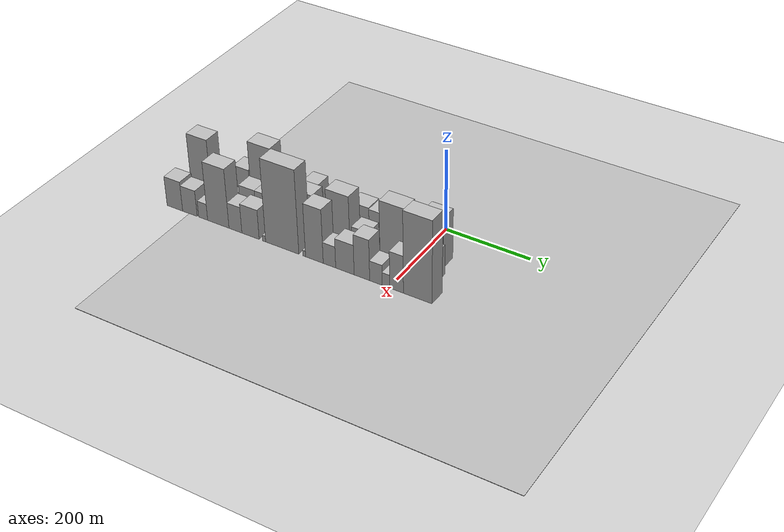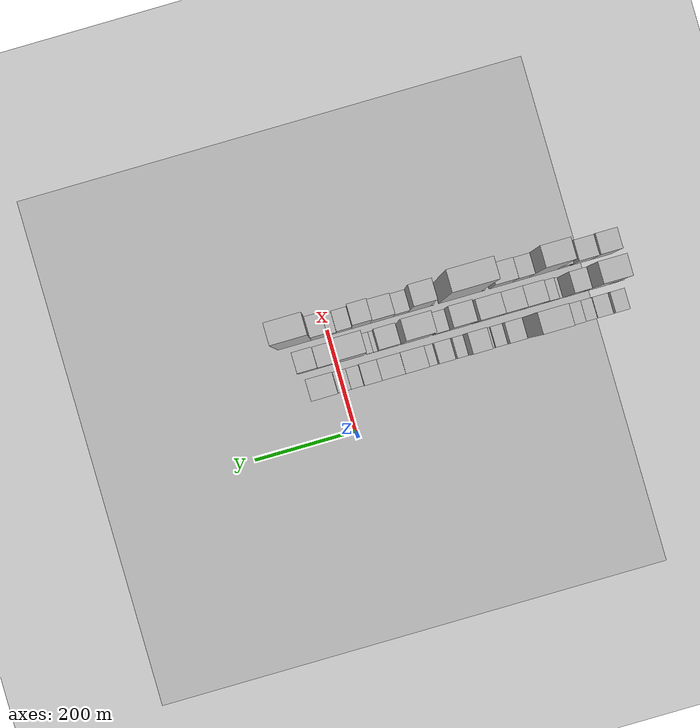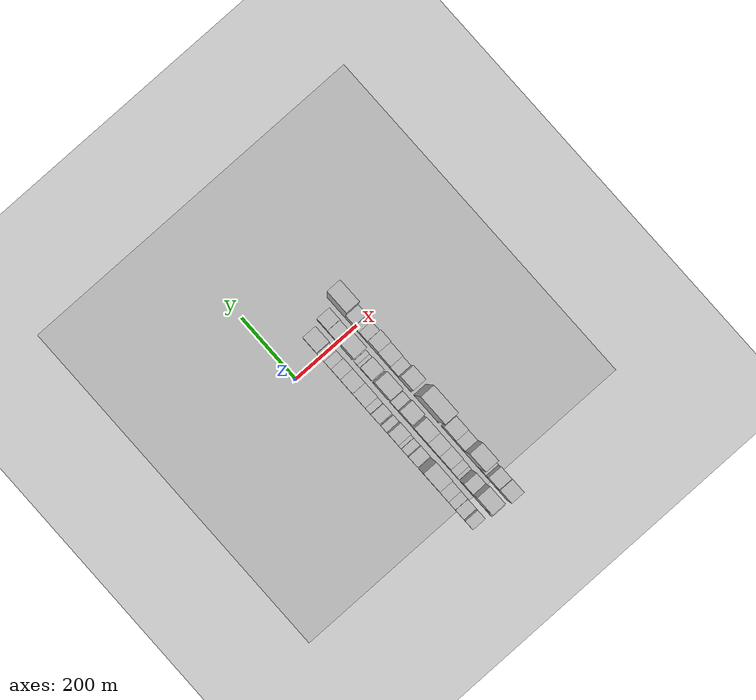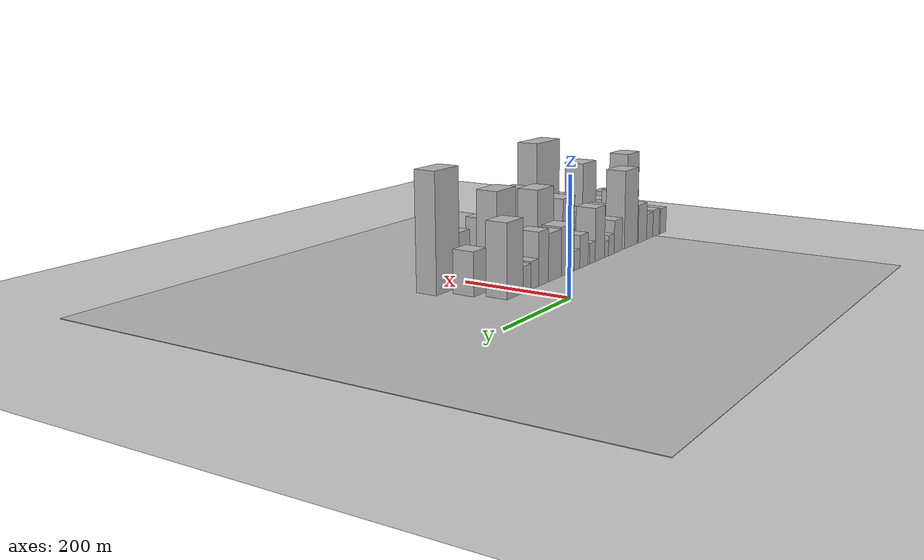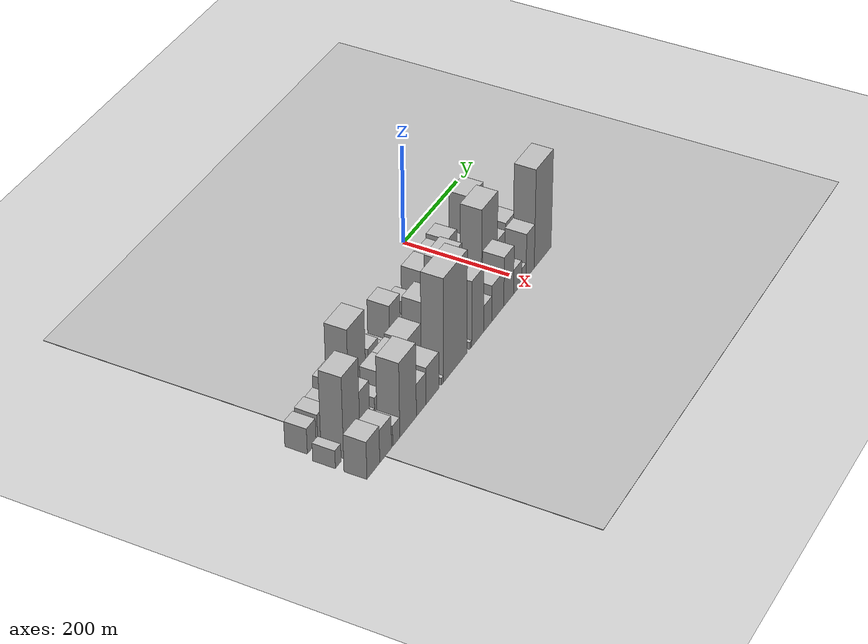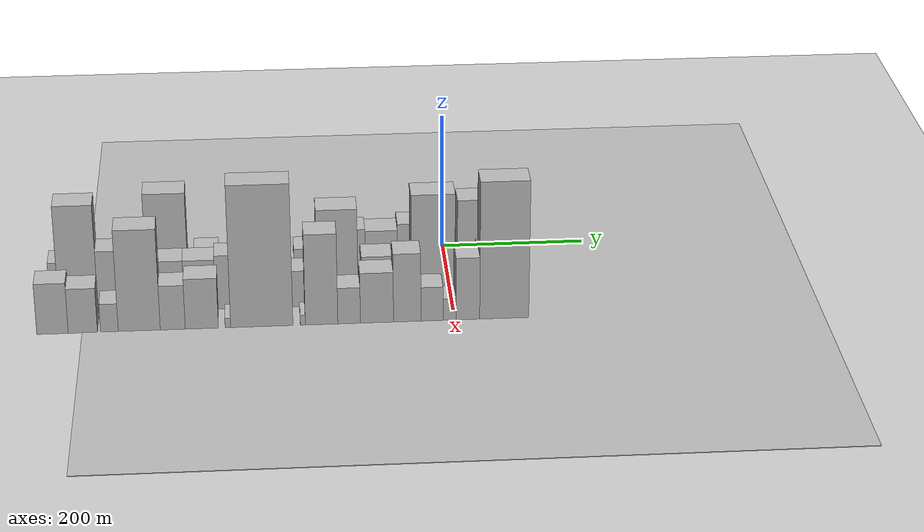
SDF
<sdf version="1.6">
 <world name="default">
  <include><name>ground_plane_1</name><uri>model://HANNAS_ground_plane</uri></include>
  <include>
   <name>ground_plane_2</name>
   <uri>model://HANNAS_ground_plane</uri>
   <pose>100 0 0  0 0 0</pose>
  </include>
  <model name="building_1">
   <static>1</static>
   <pose>100.0000 -536.0198 0 0.000000 0.000000 0.000000</pose>
   <link name="link">
    <pose>0 0 25.50 0 0 0</pose>
    <collision name="collision"><geometry><box><size>40.0000 27.9604 51.0000</size></box></geometry></collision>
    <visual name="visual">
     <cast_shadows>0</cast_shadows>
     <geometry><box><size>40.0000 27.9604 51.0000</size></box></geometry>
     <material>
      <script>
       <uri>model://HANNAS_wall/materials/scripts</uri>
       <uri>model://HANNAS_wall/materials/textures</uri>
       <name>vrc/HANNAS_wall</name>
      </script>
     </material>
    </visual>
   </link>
  </model>
  <model name="building_2">
   <static>1</static>
   <pose>100.0000 -501.8610 0 0.000000 0.000000 0.000000</pose>
   <link name="link">
    <pose>0 0 27.00 0 0 0</pose>
    <collision name="collision"><geometry><box><size>40.0000 30.3572 54.0000</size></box></geometry></collision>
    <visual name="visual">
     <cast_shadows>0</cast_shadows>
     <geometry><box><size>40.0000 30.3572 54.0000</size></box></geometry>
     <material>
      <script>
       <uri>model://HANNAS_wall/materials/scripts</uri>
       <uri>model://HANNAS_wall/materials/textures</uri>
       <name>vrc/HANNAS_wall</name>
      </script>
     </material>
    </visual>
   </link>
  </model>
  <model name="building_3">
   <static>1</static>
   <pose>100.0000 -472.5539 0 0.000000 0.000000 0.000000</pose>
   <link name="link">
    <pose>0 0 25.50 0 0 0</pose>
    <collision name="collision"><geometry><box><size>40.0000 28.2571 51.0000</size></box></geometry></collision>
    <visual name="visual">
     <cast_shadows>0</cast_shadows>
     <geometry><box><size>40.0000 28.2571 51.0000</size></box></geometry>
     <material>
      <script>
       <uri>model://HANNAS_wall/materials/scripts</uri>
       <uri>model://HANNAS_wall/materials/textures</uri>
       <name>vrc/HANNAS_wall</name>
      </script>
     </material>
    </visual>
   </link>
  </model>
  <model name="building_4">
   <static>1</static>
   <pose>100.0000 -438.8511 0 0.000000 0.000000 0.000000</pose>
   <link name="link">
    <pose>0 0 37.50 0 0 0</pose>
    <collision name="collision"><geometry><box><size>40.0000 39.1485 75.0000</size></box></geometry></collision>
    <visual name="visual">
     <cast_shadows>0</cast_shadows>
     <geometry><box><size>40.0000 39.1485 75.0000</size></box></geometry>
     <material>
      <script>
       <uri>model://HANNAS_wall/materials/scripts</uri>
       <uri>model://HANNAS_wall/materials/textures</uri>
       <name>vrc/HANNAS_wall</name>
      </script>
     </material>
    </visual>
   </link>
  </model>
  <model name="building_5">
   <static>1</static>
   <pose>100.0000 -387.6877 0 0.000000 0.000000 0.000000</pose>
   <link name="link">
    <pose>0 0 75.00 0 0 0</pose>
    <collision name="collision"><geometry><box><size>40.0000 57.1784 150.0000</size></box></geometry></collision>
    <visual name="visual">
     <cast_shadows>0</cast_shadows>
     <geometry><box><size>40.0000 57.1784 150.0000</size></box></geometry>
     <material>
      <script>
       <uri>model://HANNAS_wall/materials/scripts</uri>
       <uri>model://HANNAS_wall/materials/textures</uri>
       <name>vrc/HANNAS_wall</name>
      </script>
     </material>
    </visual>
   </link>
  </model>
  <model name="building_6">
   <static>1</static>
   <pose>100.0000 -333.3778 0 0.000000 0.000000 0.000000</pose>
   <link name="link">
    <pose>0 0 31.50 0 0 0</pose>
    <collision name="collision"><geometry><box><size>40.0000 33.4414 63.0000</size></box></geometry></collision>
    <visual name="visual">
     <cast_shadows>0</cast_shadows>
     <geometry><box><size>40.0000 33.4414 63.0000</size></box></geometry>
     <material>
      <script>
       <uri>model://HANNAS_wall/materials/scripts</uri>
       <uri>model://HANNAS_wall/materials/textures</uri>
       <name>vrc/HANNAS_wall</name>
      </script>
     </material>
    </visual>
   </link>
  </model>
  <model name="building_7">
   <static>1</static>
   <pose>100.0000 -305.0431 0 0.000000 0.000000 0.000000</pose>
   <link name="link">
    <pose>0 0 19.50 0 0 0</pose>
    <collision name="collision"><geometry><box><size>40.0000 23.2279 39.0000</size></box></geometry></collision>
    <visual name="visual">
     <cast_shadows>0</cast_shadows>
     <geometry><box><size>40.0000 23.2279 39.0000</size></box></geometry>
     <material>
      <script>
       <uri>model://HANNAS_wall/materials/scripts</uri>
       <uri>model://HANNAS_wall/materials/textures</uri>
       <name>vrc/HANNAS_wall</name>
      </script>
     </material>
    </visual>
   </link>
  </model>
  <model name="building_8">
   <static>1</static>
   <pose>100.0000 -285.4440 0 0.000000 0.000000 0.000000</pose>
   <link name="link">
    <pose>0 0 15.00 0 0 0</pose>
    <collision name="collision"><geometry><box><size>40.0000 15.9703 30.0000</size></box></geometry></collision>
    <visual name="visual">
     <cast_shadows>0</cast_shadows>
     <geometry><box><size>40.0000 15.9703 30.0000</size></box></geometry>
     <material>
      <script>
       <uri>model://HANNAS_wall/materials/scripts</uri>
       <uri>model://HANNAS_wall/materials/textures</uri>
       <name>vrc/HANNAS_wall</name>
      </script>
     </material>
    </visual>
   </link>
  </model>
  <model name="building_9">
   <static>1</static>
   <pose>100.0000 -258.9687 0 0.000000 0.000000 0.000000</pose>
   <link name="link">
    <pose>0 0 49.50 0 0 0</pose>
    <collision name="collision"><geometry><box><size>40.0000 36.9803 99.0000</size></box></geometry></collision>
    <visual name="visual">
     <cast_shadows>0</cast_shadows>
     <geometry><box><size>40.0000 36.9803 99.0000</size></box></geometry>
     <material>
      <script>
       <uri>model://HANNAS_wall/materials/scripts</uri>
       <uri>model://HANNAS_wall/materials/textures</uri>
       <name>vrc/HANNAS_wall</name>
      </script>
     </material>
    </visual>
   </link>
  </model>
  <model name="building_10">
   <static>1</static>
   <pose>100.0000 -229.9270 0 0.000000 0.000000 0.000000</pose>
   <link name="link">
    <pose>0 0 19.50 0 0 0</pose>
    <collision name="collision"><geometry><box><size>40.0000 21.1032 39.0000</size></box></geometry></collision>
    <visual name="visual">
     <cast_shadows>0</cast_shadows>
     <geometry><box><size>40.0000 21.1032 39.0000</size></box></geometry>
     <material>
      <script>
       <uri>model://HANNAS_wall/materials/scripts</uri>
       <uri>model://HANNAS_wall/materials/textures</uri>
       <name>vrc/HANNAS_wall</name>
      </script>
     </material>
    </visual>
   </link>
  </model>
  <model name="building_11">
   <static>1</static>
   <pose>100.0000 -197.5633 0 0.000000 0.000000 0.000000</pose>
   <link name="link">
    <pose>0 0 30.00 0 0 0</pose>
    <collision name="collision"><geometry><box><size>40.0000 31.6240 60.0000</size></box></geometry></collision>
    <visual name="visual">
     <cast_shadows>0</cast_shadows>
     <geometry><box><size>40.0000 31.6240 60.0000</size></box></geometry>
     <material>
      <script>
       <uri>model://HANNAS_wall/materials/scripts</uri>
       <uri>model://HANNAS_wall/materials/textures</uri>
       <name>vrc/HANNAS_wall</name>
      </script>
     </material>
    </visual>
   </link>
  </model>
  <model name="building_12">
   <static>1</static>
   <pose>100.0000 -171.0606 0 0.000000 0.000000 0.000000</pose>
   <link name="link">
    <pose>0 0 18.00 0 0 0</pose>
    <collision name="collision"><geometry><box><size>40.0000 21.3814 36.0000</size></box></geometry></collision>
    <visual name="visual">
     <cast_shadows>0</cast_shadows>
     <geometry><box><size>40.0000 21.3814 36.0000</size></box></geometry>
     <material>
      <script>
       <uri>model://HANNAS_wall/materials/scripts</uri>
       <uri>model://HANNAS_wall/materials/textures</uri>
       <name>vrc/HANNAS_wall</name>
      </script>
     </material>
    </visual>
   </link>
  </model>
  <model name="building_13">
   <static>1</static>
   <pose>100.0000 -137.8540 0 0.000000 0.000000 0.000000</pose>
   <link name="link">
    <pose>0 0 43.50 0 0 0</pose>
    <collision name="collision"><geometry><box><size>40.0000 45.0318 87.0000</size></box></geometry></collision>
    <visual name="visual">
     <cast_shadows>0</cast_shadows>
     <geometry><box><size>40.0000 45.0318 87.0000</size></box></geometry>
     <material>
      <script>
       <uri>model://HANNAS_wall/materials/scripts</uri>
       <uri>model://HANNAS_wall/materials/textures</uri>
       <name>vrc/HANNAS_wall</name>
      </script>
     </material>
    </visual>
   </link>
  </model>
  <model name="building_14">
   <static>1</static>
   <pose>100.0000 -93.0057 0 0.000000 0.000000 0.000000</pose>
   <link name="link">
    <pose>0 0 42.00 0 0 0</pose>
    <collision name="collision"><geometry><box><size>40.0000 44.6648 84.0000</size></box></geometry></collision>
    <visual name="visual">
     <cast_shadows>0</cast_shadows>
     <geometry><box><size>40.0000 44.6648 84.0000</size></box></geometry>
     <material>
      <script>
       <uri>model://HANNAS_wall/materials/scripts</uri>
       <uri>model://HANNAS_wall/materials/textures</uri>
       <name>vrc/HANNAS_wall</name>
      </script>
     </material>
    </visual>
   </link>
  </model>
  <model name="building_15">
   <static>1</static>
   <pose>100.0000 -54.0988 0 0.000000 0.000000 0.000000</pose>
   <link name="link">
    <pose>0 0 46.50 0 0 0</pose>
    <collision name="collision"><geometry><box><size>40.0000 33.1490 93.0000</size></box></geometry></collision>
    <visual name="visual">
     <cast_shadows>0</cast_shadows>
     <geometry><box><size>40.0000 33.1490 93.0000</size></box></geometry>
     <material>
      <script>
       <uri>model://HANNAS_wall/materials/scripts</uri>
       <uri>model://HANNAS_wall/materials/textures</uri>
       <name>vrc/HANNAS_wall</name>
      </script>
     </material>
    </visual>
   </link>
  </model>
  <model name="building_16">
   <static>1</static>
   <pose>100.0000 -25.1981 0 0.000000 0.000000 0.000000</pose>
   <link name="link">
    <pose>0 0 24.00 0 0 0</pose>
    <collision name="collision"><geometry><box><size>40.0000 24.6524 48.0000</size></box></geometry></collision>
    <visual name="visual">
     <cast_shadows>0</cast_shadows>
     <geometry><box><size>40.0000 24.6524 48.0000</size></box></geometry>
     <material>
      <script>
       <uri>model://HANNAS_wall/materials/scripts</uri>
       <uri>model://HANNAS_wall/materials/textures</uri>
       <name>vrc/HANNAS_wall</name>
      </script>
     </material>
    </visual>
   </link>
  </model>
  <model name="building_17">
   <static>1</static>
   <pose>100.0000 -0.3013 0 0.000000 0.000000 0.000000</pose>
   <link name="link">
    <pose>0 0 22.50 0 0 0</pose>
    <collision name="collision"><geometry><box><size>40.0000 25.1413 45.0000</size></box></geometry></collision>
    <visual name="visual">
     <cast_shadows>0</cast_shadows>
     <geometry><box><size>40.0000 25.1413 45.0000</size></box></geometry>
     <material>
      <script>
       <uri>model://HANNAS_wall/materials/scripts</uri>
       <uri>model://HANNAS_wall/materials/textures</uri>
       <name>vrc/HANNAS_wall</name>
      </script>
     </material>
    </visual>
   </link>
  </model>
  <model name="building_18">
   <static>1</static>
   <pose>100.0000 36.9575 0 0.000000 0.000000 0.000000</pose>
   <link name="link">
    <pose>0 0 63.00 0 0 0</pose>
    <collision name="collision"><geometry><box><size>40.0000 49.3762 126.0000</size></box></geometry></collision>
    <visual name="visual">
     <cast_shadows>0</cast_shadows>
     <geometry><box><size>40.0000 49.3762 126.0000</size></box></geometry>
     <material>
      <script>
       <uri>model://HANNAS_wall/materials/scripts</uri>
       <uri>model://HANNAS_wall/materials/textures</uri>
       <name>vrc/HANNAS_wall</name>
      </script>
     </material>
    </visual>
   </link>
  </model>
  <model name="building_38">
   <static>1</static>
   <pose>155.0000 -550.7602 0 0.000000 0.000000 0.000000</pose>
   <link name="link">
    <pose>0 0 18.00 0 0 0</pose>
    <collision name="collision"><geometry><box><size>40.0000 18.4797 36.0000</size></box></geometry></collision>
    <visual name="visual">
     <cast_shadows>0</cast_shadows>
     <geometry><box><size>40.0000 18.4797 36.0000</size></box></geometry>
     <material>
      <script>
       <uri>model://HANNAS_wall/materials/scripts</uri>
       <uri>model://HANNAS_wall/materials/textures</uri>
       <name>vrc/HANNAS_wall</name>
      </script>
     </material>
    </visual>
   </link>
  </model>
  <model name="building_39">
   <static>1</static>
   <pose>155.0000 -507.0626 0 0.000000 0.000000 0.000000</pose>
   <link name="link">
    <pose>0 0 81.00 0 0 0</pose>
    <collision name="collision"><geometry><box><size>40.0000 52.9155 162.0000</size></box></geometry></collision>
    <visual name="visual">
     <cast_shadows>0</cast_shadows>
     <geometry><box><size>40.0000 52.9155 162.0000</size></box></geometry>
     <material>
      <script>
       <uri>model://HANNAS_wall/materials/scripts</uri>
       <uri>model://HANNAS_wall/materials/textures</uri>
       <name>vrc/HANNAS_wall</name>
      </script>
     </material>
    </visual>
   </link>
  </model>
  <model name="building_40">
   <static>1</static>
   <pose>155.0000 -464.2342 0 0.000000 0.000000 0.000000</pose>
   <link name="link">
    <pose>0 0 46.50 0 0 0</pose>
    <collision name="collision"><geometry><box><size>40.0000 32.7412 93.0000</size></box></geometry></collision>
    <visual name="visual">
     <cast_shadows>0</cast_shadows>
     <geometry><box><size>40.0000 32.7412 93.0000</size></box></geometry>
     <material>
      <script>
       <uri>model://HANNAS_wall/materials/scripts</uri>
       <uri>model://HANNAS_wall/materials/textures</uri>
       <name>vrc/HANNAS_wall</name>
      </script>
     </material>
    </visual>
   </link>
  </model>
  <model name="building_41">
   <static>1</static>
   <pose>155.0000 -437.2215 0 0.000000 0.000000 0.000000</pose>
   <link name="link">
    <pose>0 0 12.00 0 0 0</pose>
    <collision name="collision"><geometry><box><size>40.0000 11.2841 24.0000</size></box></geometry></collision>
    <visual name="visual">
     <cast_shadows>0</cast_shadows>
     <geometry><box><size>40.0000 11.2841 24.0000</size></box></geometry>
     <material>
      <script>
       <uri>model://HANNAS_wall/materials/scripts</uri>
       <uri>model://HANNAS_wall/materials/textures</uri>
       <name>vrc/HANNAS_wall</name>
      </script>
     </material>
    </visual>
   </link>
  </model>
  <model name="building_42">
   <static>1</static>
   <pose>155.0000 -418.3878 0 0.000000 0.000000 0.000000</pose>
   <link name="link">
    <pose>0 0 22.50 0 0 0</pose>
    <collision name="collision"><geometry><box><size>40.0000 26.3834 45.0000</size></box></geometry></collision>
    <visual name="visual">
     <cast_shadows>0</cast_shadows>
     <geometry><box><size>40.0000 26.3834 45.0000</size></box></geometry>
     <material>
      <script>
       <uri>model://HANNAS_wall/materials/scripts</uri>
       <uri>model://HANNAS_wall/materials/textures</uri>
       <name>vrc/HANNAS_wall</name>
      </script>
     </material>
    </visual>
   </link>
  </model>
  <model name="building_43">
   <static>1</static>
   <pose>155.0000 -384.8480 0 0.000000 0.000000 0.000000</pose>
   <link name="link">
    <pose>0 0 37.50 0 0 0</pose>
    <collision name="collision"><geometry><box><size>40.0000 40.6961 75.0000</size></box></geometry></collision>
    <visual name="visual">
     <cast_shadows>0</cast_shadows>
     <geometry><box><size>40.0000 40.6961 75.0000</size></box></geometry>
     <material>
      <script>
       <uri>model://HANNAS_wall/materials/scripts</uri>
       <uri>model://HANNAS_wall/materials/textures</uri>
       <name>vrc/HANNAS_wall</name>
      </script>
     </material>
    </visual>
   </link>
  </model>
  <model name="building_44">
   <static>1</static>
   <pose>155.0000 -343.2019 0 0.000000 0.000000 0.000000</pose>
   <link name="link">
    <pose>0 0 37.50 0 0 0</pose>
    <collision name="collision"><geometry><box><size>40.0000 42.5960 75.0000</size></box></geometry></collision>
    <visual name="visual">
     <cast_shadows>0</cast_shadows>
     <geometry><box><size>40.0000 42.5960 75.0000</size></box></geometry>
     <material>
      <script>
       <uri>model://HANNAS_wall/materials/scripts</uri>
       <uri>model://HANNAS_wall/materials/textures</uri>
       <name>vrc/HANNAS_wall</name>
      </script>
     </material>
    </visual>
   </link>
  </model>
  <model name="building_45">
   <static>1</static>
   <pose>155.0000 -297.6463 0 0.000000 0.000000 0.000000</pose>
   <link name="link">
    <pose>0 0 40.50 0 0 0</pose>
    <collision name="collision"><geometry><box><size>40.0000 48.5152 81.0000</size></box></geometry></collision>
    <visual name="visual">
     <cast_shadows>0</cast_shadows>
     <geometry><box><size>40.0000 48.5152 81.0000</size></box></geometry>
     <material>
      <script>
       <uri>model://HANNAS_wall/materials/scripts</uri>
       <uri>model://HANNAS_wall/materials/textures</uri>
       <name>vrc/HANNAS_wall</name>
      </script>
     </material>
    </visual>
   </link>
  </model>
  <model name="building_46">
   <static>1</static>
   <pose>155.0000 -270.0668 0 0.000000 0.000000 0.000000</pose>
   <link name="link">
    <pose>0 0 7.50 0 0 0</pose>
    <collision name="collision"><geometry><box><size>40.0000 6.6439 15.0000</size></box></geometry></collision>
    <visual name="visual">
     <cast_shadows>0</cast_shadows>
     <geometry><box><size>40.0000 6.6439 15.0000</size></box></geometry>
     <material>
      <script>
       <uri>model://HANNAS_wall/materials/scripts</uri>
       <uri>model://HANNAS_wall/materials/textures</uri>
       <name>vrc/HANNAS_wall</name>
      </script>
     </material>
    </visual>
   </link>
  </model>
  <model name="building_47">
   <static>1</static>
   <pose>155.0000 -240.4129 0 0.000000 0.000000 0.000000</pose>
   <link name="link">
    <pose>0 0 57.00 0 0 0</pose>
    <collision name="collision"><geometry><box><size>40.0000 44.6639 114.0000</size></box></geometry></collision>
    <visual name="visual">
     <cast_shadows>0</cast_shadows>
     <geometry><box><size>40.0000 44.6639 114.0000</size></box></geometry>
     <material>
      <script>
       <uri>model://HANNAS_wall/materials/scripts</uri>
       <uri>model://HANNAS_wall/materials/textures</uri>
       <name>vrc/HANNAS_wall</name>
      </script>
     </material>
    </visual>
   </link>
  </model>
  <model name="building_48">
   <static>1</static>
   <pose>155.0000 -204.3218 0 0.000000 0.000000 0.000000</pose>
   <link name="link">
    <pose>0 0 27.00 0 0 0</pose>
    <collision name="collision"><geometry><box><size>40.0000 27.5182 54.0000</size></box></geometry></collision>
    <visual name="visual">
     <cast_shadows>0</cast_shadows>
     <geometry><box><size>40.0000 27.5182 54.0000</size></box></geometry>
     <material>
      <script>
       <uri>model://HANNAS_wall/materials/scripts</uri>
       <uri>model://HANNAS_wall/materials/textures</uri>
       <name>vrc/HANNAS_wall</name>
      </script>
     </material>
    </visual>
   </link>
  </model>
  <model name="building_49">
   <static>1</static>
   <pose>155.0000 -155.7295 0 0.000000 0.000000 0.000000</pose>
   <link name="link">
    <pose>0 0 72.00 0 0 0</pose>
    <collision name="collision"><geometry><box><size>40.0000 55.6664 144.0000</size></box></geometry></collision>
    <visual name="visual">
     <cast_shadows>0</cast_shadows>
     <geometry><box><size>40.0000 55.6664 144.0000</size></box></geometry>
     <material>
      <script>
       <uri>model://HANNAS_wall/materials/scripts</uri>
       <uri>model://HANNAS_wall/materials/textures</uri>
       <name>vrc/HANNAS_wall</name>
      </script>
     </material>
    </visual>
   </link>
  </model>
  <model name="building_50">
   <static>1</static>
   <pose>155.0000 -102.1150 0 0.000000 0.000000 0.000000</pose>
   <link name="link">
    <pose>0 0 36.00 0 0 0</pose>
    <collision name="collision"><geometry><box><size>40.0000 41.5627 72.0000</size></box></geometry></collision>
    <visual name="visual">
     <cast_shadows>0</cast_shadows>
     <geometry><box><size>40.0000 41.5627 72.0000</size></box></geometry>
     <material>
      <script>
       <uri>model://HANNAS_wall/materials/scripts</uri>
       <uri>model://HANNAS_wall/materials/textures</uri>
       <name>vrc/HANNAS_wall</name>
      </script>
     </material>
    </visual>
   </link>
  </model>
  <model name="building_51">
   <static>1</static>
   <pose>155.0000 -76.7715 0 0.000000 0.000000 0.000000</pose>
   <link name="link">
    <pose>0 0 10.50 0 0 0</pose>
    <collision name="collision"><geometry><box><size>40.0000 9.1243 21.0000</size></box></geometry></collision>
    <visual name="visual">
     <cast_shadows>0</cast_shadows>
     <geometry><box><size>40.0000 9.1243 21.0000</size></box></geometry>
     <material>
      <script>
       <uri>model://HANNAS_wall/materials/scripts</uri>
       <uri>model://HANNAS_wall/materials/textures</uri>
       <name>vrc/HANNAS_wall</name>
      </script>
     </material>
    </visual>
   </link>
  </model>
  <model name="building_52">
   <static>1</static>
   <pose>155.0000 -65.6060 0 0.000000 0.000000 0.000000</pose>
   <link name="link">
    <pose>0 0 13.50 0 0 0</pose>
    <collision name="collision"><geometry><box><size>40.0000 13.2067 27.0000</size></box></geometry></collision>
    <visual name="visual">
     <cast_shadows>0</cast_shadows>
     <geometry><box><size>40.0000 13.2067 27.0000</size></box></geometry>
     <material>
      <script>
       <uri>model://HANNAS_wall/materials/scripts</uri>
       <uri>model://HANNAS_wall/materials/textures</uri>
       <name>vrc/HANNAS_wall</name>
      </script>
     </material>
    </visual>
   </link>
  </model>
  <model name="building_53">
   <static>1</static>
   <pose>155.0000 -25.1493 0 0.000000 0.000000 0.000000</pose>
   <link name="link">
    <pose>0 0 81.00 0 0 0</pose>
    <collision name="collision"><geometry><box><size>40.0000 59.7066 162.0000</size></box></geometry></collision>
    <visual name="visual">
     <cast_shadows>0</cast_shadows>
     <geometry><box><size>40.0000 59.7066 162.0000</size></box></geometry>
     <material>
      <script>
       <uri>model://HANNAS_wall/materials/scripts</uri>
       <uri>model://HANNAS_wall/materials/textures</uri>
       <name>vrc/HANNAS_wall</name>
      </script>
     </material>
    </visual>
   </link>
  </model>
  <model name="building_54">
   <static>1</static>
   <pose>155.0000 20.3840 0 0.000000 0.000000 0.000000</pose>
   <link name="link">
    <pose>0 0 30.00 0 0 0</pose>
    <collision name="collision"><geometry><box><size>40.0000 31.3599 60.0000</size></box></geometry></collision>
    <visual name="visual">
     <cast_shadows>0</cast_shadows>
     <geometry><box><size>40.0000 31.3599 60.0000</size></box></geometry>
     <material>
      <script>
       <uri>model://HANNAS_wall/materials/scripts</uri>
       <uri>model://HANNAS_wall/materials/textures</uri>
       <name>vrc/HANNAS_wall</name>
      </script>
     </material>
    </visual>
   </link>
  </model>
  <model name="building_55">
   <static>1</static>
   <pose>155.0000 55.3237 0 0.000000 0.000000 0.000000</pose>
   <link name="link">
    <pose>0 0 37.50 0 0 0</pose>
    <collision name="collision"><geometry><box><size>40.0000 38.5194 75.0000</size></box></geometry></collision>
    <visual name="visual">
     <cast_shadows>0</cast_shadows>
     <geometry><box><size>40.0000 38.5194 75.0000</size></box></geometry>
     <material>
      <script>
       <uri>model://HANNAS_wall/materials/scripts</uri>
       <uri>model://HANNAS_wall/materials/textures</uri>
       <name>vrc/HANNAS_wall</name>
      </script>
     </material>
    </visual>
   </link>
  </model>
  <model name="building_72">
   <static>1</static>
   <pose>210.0000 -539.1274 0 0.000000 0.000000 0.000000</pose>
   <link name="link">
    <pose>0 0 37.50 0 0 0</pose>
    <collision name="collision"><geometry><box><size>40.0000 41.7452 75.0000</size></box></geometry></collision>
    <visual name="visual">
     <cast_shadows>0</cast_shadows>
     <geometry><box><size>40.0000 41.7452 75.0000</size></box></geometry>
     <material>
      <script>
       <uri>model://HANNAS_wall/materials/scripts</uri>
       <uri>model://HANNAS_wall/materials/textures</uri>
       <name>vrc/HANNAS_wall</name>
      </script>
     </material>
    </visual>
   </link>
  </model>
  <model name="building_73">
   <static>1</static>
   <pose>210.0000 -498.8334 0 0.000000 0.000000 0.000000</pose>
   <link name="link">
    <pose>0 0 33.00 0 0 0</pose>
    <collision name="collision"><geometry><box><size>40.0000 38.8429 66.0000</size></box></geometry></collision>
    <visual name="visual">
     <cast_shadows>0</cast_shadows>
     <geometry><box><size>40.0000 38.8429 66.0000</size></box></geometry>
     <material>
      <script>
       <uri>model://HANNAS_wall/materials/scripts</uri>
       <uri>model://HANNAS_wall/materials/textures</uri>
       <name>vrc/HANNAS_wall</name>
      </script>
     </material>
    </visual>
   </link>
  </model>
  <model name="building_74">
   <static>1</static>
   <pose>210.0000 -463.5973 0 0.000000 0.000000 0.000000</pose>
   <link name="link">
    <pose>0 0 21.00 0 0 0</pose>
    <collision name="collision"><geometry><box><size>40.0000 23.6293 42.0000</size></box></geometry></collision>
    <visual name="visual">
     <cast_shadows>0</cast_shadows>
     <geometry><box><size>40.0000 23.6293 42.0000</size></box></geometry>
     <material>
      <script>
       <uri>model://HANNAS_wall/materials/scripts</uri>
       <uri>model://HANNAS_wall/materials/textures</uri>
       <name>vrc/HANNAS_wall</name>
      </script>
     </material>
    </visual>
   </link>
  </model>
  <model name="building_75">
   <static>1</static>
   <pose>210.0000 -423.7992 0 0.000000 0.000000 0.000000</pose>
   <link name="link">
    <pose>0 0 75.00 0 0 0</pose>
    <collision name="collision"><geometry><box><size>40.0000 55.9669 150.0000</size></box></geometry></collision>
    <visual name="visual">
     <cast_shadows>0</cast_shadows>
     <geometry><box><size>40.0000 55.9669 150.0000</size></box></geometry>
     <material>
      <script>
       <uri>model://HANNAS_wall/materials/scripts</uri>
       <uri>model://HANNAS_wall/materials/textures</uri>
       <name>vrc/HANNAS_wall</name>
      </script>
     </material>
    </visual>
   </link>
  </model>
  <model name="building_76">
   <static>1</static>
   <pose>210.0000 -379.1339 0 0.000000 0.000000 0.000000</pose>
   <link name="link">
    <pose>0 0 33.00 0 0 0</pose>
    <collision name="collision"><geometry><box><size>40.0000 33.3637 66.0000</size></box></geometry></collision>
    <visual name="visual">
     <cast_shadows>0</cast_shadows>
     <geometry><box><size>40.0000 33.3637 66.0000</size></box></geometry>
     <material>
      <script>
       <uri>model://HANNAS_wall/materials/scripts</uri>
       <uri>model://HANNAS_wall/materials/textures</uri>
       <name>vrc/HANNAS_wall</name>
      </script>
     </material>
    </visual>
   </link>
  </model>
  <model name="building_77">
   <static>1</static>
   <pose>210.0000 -340.2926 0 0.000000 0.000000 0.000000</pose>
   <link name="link">
    <pose>0 0 37.50 0 0 0</pose>
    <collision name="collision"><geometry><box><size>40.0000 44.3188 75.0000</size></box></geometry></collision>
    <visual name="visual">
     <cast_shadows>0</cast_shadows>
     <geometry><box><size>40.0000 44.3188 75.0000</size></box></geometry>
     <material>
      <script>
       <uri>model://HANNAS_wall/materials/scripts</uri>
       <uri>model://HANNAS_wall/materials/textures</uri>
       <name>vrc/HANNAS_wall</name>
      </script>
     </material>
    </visual>
   </link>
  </model>
  <model name="building_78">
   <static>1</static>
   <pose>210.0000 -305.4072 0 0.000000 0.000000 0.000000</pose>
   <link name="link">
    <pose>0 0 7.50 0 0 0</pose>
    <collision name="collision"><geometry><box><size>40.0000 7.4519 15.0000</size></box></geometry></collision>
    <visual name="visual">
     <cast_shadows>0</cast_shadows>
     <geometry><box><size>40.0000 7.4519 15.0000</size></box></geometry>
     <material>
      <script>
       <uri>model://HANNAS_wall/materials/scripts</uri>
       <uri>model://HANNAS_wall/materials/textures</uri>
       <name>vrc/HANNAS_wall</name>
      </script>
     </material>
    </visual>
   </link>
  </model>
  <model name="building_79">
   <static>1</static>
   <pose>210.0000 -259.9147 0 0.000000 0.000000 0.000000</pose>
   <link name="link">
    <pose>0 0 105.00 0 0 0</pose>
    <collision name="collision"><geometry><box><size>40.0000 83.5331 210.0000</size></box></geometry></collision>
    <visual name="visual">
     <cast_shadows>0</cast_shadows>
     <geometry><box><size>40.0000 83.5331 210.0000</size></box></geometry>
     <material>
      <script>
       <uri>model://HANNAS_wall/materials/scripts</uri>
       <uri>model://HANNAS_wall/materials/textures</uri>
       <name>vrc/HANNAS_wall</name>
      </script>
     </material>
    </visual>
   </link>
  </model>
  <model name="building_80">
   <static>1</static>
   <pose>210.0000 -204.8326 0 0.000000 0.000000 0.000000</pose>
   <link name="link">
    <pose>0 0 7.50 0 0 0</pose>
    <collision name="collision"><geometry><box><size>40.0000 6.6311 15.0000</size></box></geometry></collision>
    <visual name="visual">
     <cast_shadows>0</cast_shadows>
     <geometry><box><size>40.0000 6.6311 15.0000</size></box></geometry>
     <material>
      <script>
       <uri>model://HANNAS_wall/materials/scripts</uri>
       <uri>model://HANNAS_wall/materials/textures</uri>
       <name>vrc/HANNAS_wall</name>
      </script>
     </material>
    </visual>
   </link>
  </model>
  <model name="building_81">
   <static>1</static>
   <pose>210.0000 -179.6820 0 0.000000 0.000000 0.000000</pose>
   <link name="link">
    <pose>0 0 67.50 0 0 0</pose>
    <collision name="collision"><geometry><box><size>40.0000 43.6701 135.0000</size></box></geometry></collision>
    <visual name="visual">
     <cast_shadows>0</cast_shadows>
     <geometry><box><size>40.0000 43.6701 135.0000</size></box></geometry>
     <material>
      <script>
       <uri>model://HANNAS_wall/materials/scripts</uri>
       <uri>model://HANNAS_wall/materials/textures</uri>
       <name>vrc/HANNAS_wall</name>
      </script>
     </material>
    </visual>
   </link>
  </model>
  <model name="building_82">
   <static>1</static>
   <pose>210.0000 -142.6595 0 0.000000 0.000000 0.000000</pose>
   <link name="link">
    <pose>0 0 27.00 0 0 0</pose>
    <collision name="collision"><geometry><box><size>40.0000 30.3748 54.0000</size></box></geometry></collision>
    <visual name="visual">
     <cast_shadows>0</cast_shadows>
     <geometry><box><size>40.0000 30.3748 54.0000</size></box></geometry>
     <material>
      <script>
       <uri>model://HANNAS_wall/materials/scripts</uri>
       <uri>model://HANNAS_wall/materials/textures</uri>
       <name>vrc/HANNAS_wall</name>
      </script>
     </material>
    </visual>
   </link>
  </model>
  <model name="building_83">
   <static>1</static>
   <pose>210.0000 -105.1425 0 0.000000 0.000000 0.000000</pose>
   <link name="link">
    <pose>0 0 37.50 0 0 0</pose>
    <collision name="collision"><geometry><box><size>40.0000 44.6591 75.0000</size></box></geometry></collision>
    <visual name="visual">
     <cast_shadows>0</cast_shadows>
     <geometry><box><size>40.0000 44.6591 75.0000</size></box></geometry>
     <material>
      <script>
       <uri>model://HANNAS_wall/materials/scripts</uri>
       <uri>model://HANNAS_wall/materials/textures</uri>
       <name>vrc/HANNAS_wall</name>
      </script>
     </material>
    </visual>
   </link>
  </model>
  <model name="building_84">
   <static>1</static>
   <pose>210.0000 -64.2749 0 0.000000 0.000000 0.000000</pose>
   <link name="link">
    <pose>0 0 51.00 0 0 0</pose>
    <collision name="collision"><geometry><box><size>40.0000 37.0761 102.0000</size></box></geometry></collision>
    <visual name="visual">
     <cast_shadows>0</cast_shadows>
     <geometry><box><size>40.0000 37.0761 102.0000</size></box></geometry>
     <material>
      <script>
       <uri>model://HANNAS_wall/materials/scripts</uri>
       <uri>model://HANNAS_wall/materials/textures</uri>
       <name>vrc/HANNAS_wall</name>
      </script>
     </material>
    </visual>
   </link>
  </model>
  <model name="building_85">
   <static>1</static>
   <pose>210.0000 -30.7901 0 0.000000 0.000000 0.000000</pose>
   <link name="link">
    <pose>0 0 25.50 0 0 0</pose>
    <collision name="collision"><geometry><box><size>40.0000 29.8936 51.0000</size></box></geometry></collision>
    <visual name="visual">
     <cast_shadows>0</cast_shadows>
     <geometry><box><size>40.0000 29.8936 51.0000</size></box></geometry>
     <material>
      <script>
       <uri>model://HANNAS_wall/materials/scripts</uri>
       <uri>model://HANNAS_wall/materials/textures</uri>
       <name>vrc/HANNAS_wall</name>
      </script>
     </material>
    </visual>
   </link>
  </model>
  <model name="building_86">
   <static>1</static>
   <pose>210.0000 -6.9695 0 0.000000 0.000000 0.000000</pose>
   <link name="link">
    <pose>0 0 16.50 0 0 0</pose>
    <collision name="collision"><geometry><box><size>40.0000 17.7476 33.0000</size></box></geometry></collision>
    <visual name="visual">
     <cast_shadows>0</cast_shadows>
     <geometry><box><size>40.0000 17.7476 33.0000</size></box></geometry>
     <material>
      <script>
       <uri>model://HANNAS_wall/materials/scripts</uri>
       <uri>model://HANNAS_wall/materials/textures</uri>
       <name>vrc/HANNAS_wall</name>
      </script>
     </material>
    </visual>
   </link>
  </model>
  <model name="building_87">
   <static>1</static>
   <pose>210.0000 17.8559 0 0.000000 0.000000 0.000000</pose>
   <link name="link">
    <pose>0 0 46.50 0 0 0</pose>
    <collision name="collision"><geometry><box><size>40.0000 31.9033 93.0000</size></box></geometry></collision>
    <visual name="visual">
     <cast_shadows>0</cast_shadows>
     <geometry><box><size>40.0000 31.9033 93.0000</size></box></geometry>
     <material>
      <script>
       <uri>model://HANNAS_wall/materials/scripts</uri>
       <uri>model://HANNAS_wall/materials/textures</uri>
       <name>vrc/HANNAS_wall</name>
      </script>
     </material>
    </visual>
   </link>
  </model>
  <model name="building_88">
   <static>1</static>
   <pose>210.0000 67.0490 0 0.000000 0.000000 0.000000</pose>
   <link name="link">
    <pose>0 0 102.00 0 0 0</pose>
    <collision name="collision"><geometry><box><size>40.0000 66.4829 204.0000</size></box></geometry></collision>
    <visual name="visual">
     <cast_shadows>0</cast_shadows>
     <geometry><box><size>40.0000 66.4829 204.0000</size></box></geometry>
     <material>
      <script>
       <uri>model://HANNAS_wall/materials/scripts</uri>
       <uri>model://HANNAS_wall/materials/textures</uri>
       <name>vrc/HANNAS_wall</name>
      </script>
     </material>
    </visual>
   </link>
  </model>
 </world>
</sdf>
